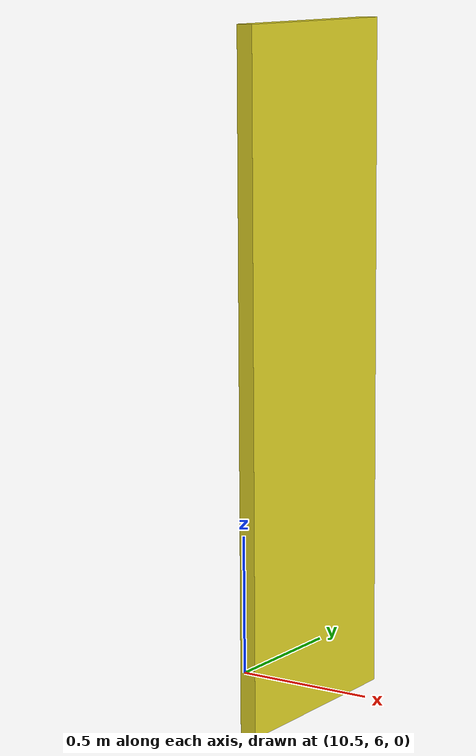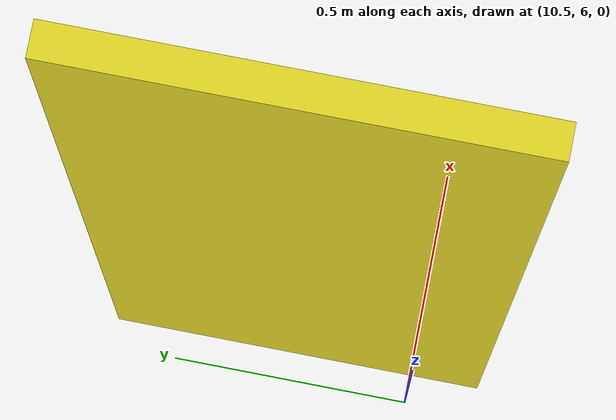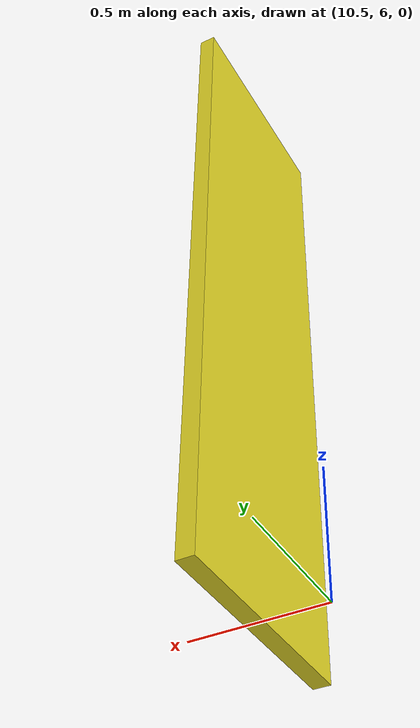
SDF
<sdf version='1.4'>
  <model name='sliding_door'>
    <link name='door'>
      <pose>10.615 6.25 1.06 0 -0 1.57</pose>
      <inertial>
        <pose>0 0 0 0 -0 0</pose>
        <mass>10</mass>
        <inertia>
          <ixx>1</ixx>
          <ixy>0</ixy>
          <ixz>0</ixz>
          <iyy>0.1</iyy>
          <iyz>0</iyz>
          <izz>0.1</izz>
        </inertia>
      </inertial>
      <collision name='door_collision'>
        <pose>0 0 0 0 -0 0</pose>
        <geometry>
          <box>
            <size>0.8 0.06 2.47</size>
          </box>
        </geometry>
        <surface>
          <contact>
            <ode/>
          </contact>
          <friction>
            <ode/>
          </friction>
        </surface>
      </collision>
      <visual name='door_visual'>
        <pose>0 0 0 0 -0 0</pose>
        <geometry>
          <box>
            <size>0.8 0.06 2.47</size>
          </box>
        </geometry>
        <material>
          <script>
            <name>Gazebo/Yellow</name>
            <uri>__default__</uri>
          </script>
        </material>
      </visual>
      <gravity>0</gravity>
      <velocity_decay>
        <linear>0</linear>
        <angular>0</angular>
      </velocity_decay>2
      <self_collide>0</self_collide>
    </link>
    <joint name='grounding_joint' type='prismatic'>
      <child>door</child>
      <parent>world</parent>
      <axis>
        <xyz>-0.000796327 1 0</xyz>
        <limit>
          <lower>0</lower>
          <upper>-0.05</upper>
          <effort>10</effort>
          <velocity>0.5</velocity>
        </limit>
        <dynamics>
          <damping>1</damping>
        </dynamics>
      </axis>
    </joint>

    <plugin name="auto_elev_door_plugin" filename="libauto_door.so">
      <model_domain_space>auto_door_</model_domain_space>
      <elevator_name>elevator_1</elevator_name>
      <door_direction>right</door_direction>
      <max_trans_dist>0.711305</max_trans_dist>
      <speed>1.0</speed>
    </plugin>

  </model>
</sdf>
